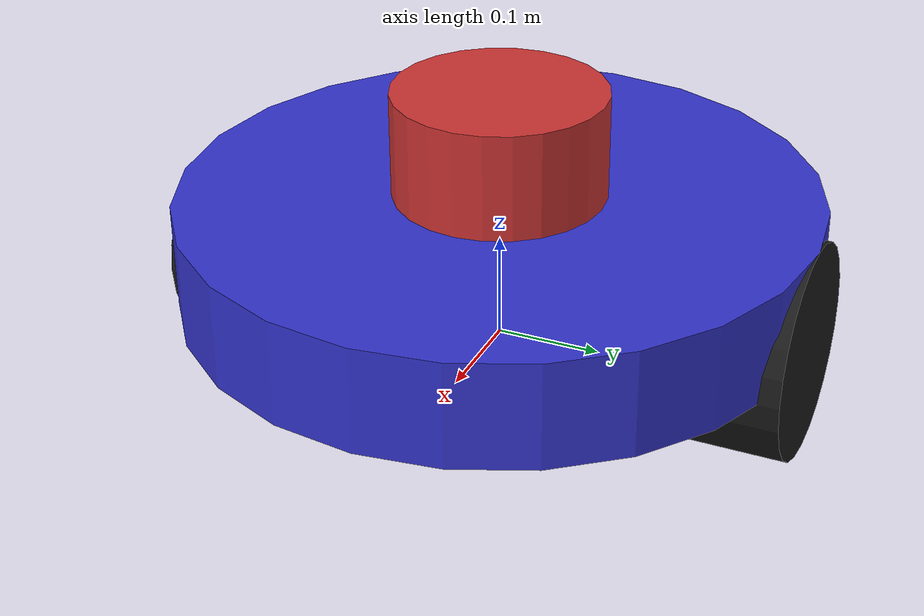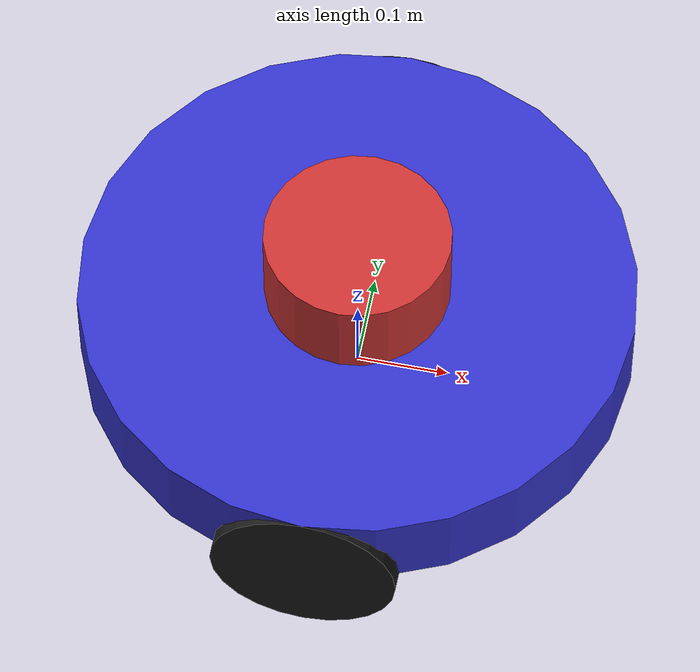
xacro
<?xml version="1.0"?>
<robot xmlns:xacro="http://www.ros.org/wiki/xacro" name="differential_drive_robot">

  <!-- Define properties for robot dimensions -->
  <xacro:property name="wheel_radius" value="0.1"/>
  <xacro:property name="wheel_thickness" value="0.1"/>
  <xacro:property name="wheel_mass" value="0.5"/>

  <xacro:property name="base_radius" value="0.3"/>
  <xacro:property name="base_height" value="0.1"/>
  <xacro:property name="base_mass" value="5.0"/>

  <xacro:property name="lidar_radius" value="0.1"/>
  <xacro:property name="lidar_height" value="0.1"/>
  <xacro:property name="lidar_mass" value="0.3"/>

  <xacro:property name="wheel_separation" value="0.5"/>

  <!-- Macro for calculating cylinder inertia -->
  <xacro:macro name="cylinder_inertia" params="mass radius height">
    <inertia
      ixx="${mass * (3 * radius * radius + height * height) / 12}"
      ixy="0.0"
      ixz="0.0"
      iyy="${mass * (3 * radius * radius + height * height) / 12}"
      iyz="0.0"
      izz="${mass * radius * radius / 2}"/>
  </xacro:macro>

  <!-- Macro for box inertia -->
  <xacro:macro name="box_inertia" params="mass x y z">
    <inertia
      ixx="${mass * (y*y + z*z) / 12}"
      ixy="0.0"
      ixz="0.0"
      iyy="${mass * (x*x + z*z) / 12}"
      iyz="0.0"
      izz="${mass * (x*x + y*y) / 12}"/>
  </xacro:macro>

  <!-- Base Link -->
  <link name="base_link">
    <visual>
      <origin xyz="0 0 0" rpy="0 0 0"/>
      <geometry>
        <cylinder radius="${base_radius}" length="${base_height}"/>
      </geometry>
      <material name="blue">
        <color rgba="0.2 0.2 0.8 1.0"/>
      </material>
    </visual>

    <collision>
      <origin xyz="0 0 0" rpy="0 0 0"/>
      <geometry>
        <cylinder radius="${base_radius}" length="${base_height}"/>
      </geometry>
    </collision>

    <inertial>
      <origin xyz="0 0 0" rpy="0 0 0"/>
      <mass value="${base_mass}"/>
      <xacro:cylinder_inertia mass="${base_mass}" radius="${base_radius}" height="${base_height}"/>
    </inertial>
  </link>

  <!-- Base Footprint -->
  <link name="base_footprint"/>

  <joint name="base_footprint_joint" type="fixed">
    <parent link="base_footprint"/>
    <child link="base_link"/>
    <origin xyz="0 0 ${wheel_radius}" rpy="0 0 0"/>
  </joint>

  <!-- Wheel Macro -->
  <xacro:macro name="wheel" params="prefix reflect">
    <link name="${prefix}_wheel_link">
      <visual>
        <origin xyz="0 0 0" rpy="${pi/2} 0 0"/>
        <geometry>
          <cylinder radius="${wheel_radius}" length="${wheel_thickness}"/>
        </geometry>
        <material name="black">
          <color rgba="0.1 0.1 0.1 1.0"/>
        </material>
      </visual>

      <collision>
        <origin xyz="0 0 0" rpy="${pi/2} 0 0"/>
        <geometry>
          <cylinder radius="${wheel_radius}" length="${wheel_thickness}"/>
        </geometry>
      </collision>

      <inertial>
        <origin xyz="0 0 0" rpy="${pi/2} 0 0"/>
        <mass value="${wheel_mass}"/>
        <inertia
          ixx="${wheel_mass * (3 * wheel_radius * wheel_radius + wheel_thickness * wheel_thickness) / 12}"
          ixy="0.0"
          ixz="0.0"
          iyy="${wheel_mass * (3 * wheel_radius * wheel_radius + wheel_thickness * wheel_thickness) / 12}"
          iyz="0.0"
          izz="${wheel_mass * wheel_radius * wheel_radius / 2}"/>
      </inertial>
    </link>

    <joint name="${prefix}_wheel_joint" type="continuous">
      <parent link="base_link"/>
      <child link="${prefix}_wheel_link"/>
      <origin xyz="0 ${reflect * wheel_separation/2} ${-base_height/2}" rpy="0 0 0"/>
      <axis xyz="0 1 0"/>
      <limit effort="10.0" velocity="10.0"/>
    </joint>
  </xacro:macro>

  <!-- Create wheels -->
  <xacro:wheel prefix="left" reflect="1"/>
  <xacro:wheel prefix="right" reflect="-1"/>

  <!-- Lidar Link -->
  <link name="lidar_link">
    <visual>
      <origin xyz="0 0 0" rpy="0 0 0"/>
      <geometry>
        <cylinder radius="${lidar_radius}" length="${lidar_height}"/>
      </geometry>
      <material name="red">
        <color rgba="0.8 0.2 0.2 1.0"/>
      </material>
    </visual>

    <collision>
      <origin xyz="0 0 0" rpy="0 0 0"/>
      <geometry>
        <cylinder radius="${lidar_radius}" length="${lidar_height}"/>
      </geometry>
    </collision>

    <inertial>
      <origin xyz="0 0 0" rpy="0 0 0"/>
      <mass value="${lidar_mass}"/>
      <xacro:cylinder_inertia mass="${lidar_mass}" radius="${lidar_radius}" height="${lidar_height}"/>
    </inertial>
  </link>

  <joint name="lidar_joint" type="fixed">
    <parent link="base_link"/>
    <child link="lidar_link"/>
    <origin xyz="0 0 ${base_height/2 + lidar_height/2}" rpy="0 0 0"/>
  </joint>

  <!-- IMU Link -->
  <link name="imu_link">
    <visual>
      <origin xyz="0 0 0" rpy="0 0 0"/>
      <geometry>
        <box size="0.05 0.05 0.02"/>
      </geometry>
      <material name="green">
        <color rgba="0.2 0.8 0.2 1.0"/>
      </material>
    </visual>

    <collision>
      <origin xyz="0 0 0" rpy="0 0 0"/>
      <geometry>
        <box size="0.05 0.05 0.02"/>
      </geometry>
    </collision>

    <inertial>
      <origin xyz="0 0 0" rpy="0 0 0"/>
      <mass value="0.1"/>
      <xacro:box_inertia mass="0.1" x="0.05" y="0.05" z="0.02"/>
    </inertial>
  </link>

  <joint name="imu_joint" type="fixed">
    <parent link="base_link"/>
    <child link="imu_link"/>
    <origin xyz="0 0 0" rpy="0 0 0"/>
  </joint>

  <!-- Gazebo Plugins and Sensors -->

  <!-- Gazebo reference for base_link -->
  <gazebo reference="base_link">
    <material>Gazebo/Blue</material>
  </gazebo>

  <gazebo reference="left_wheel_link">
    <material>Gazebo/Black</material>
  </gazebo>

  <gazebo reference="right_wheel_link">
    <material>Gazebo/Black</material>
  </gazebo>

  <gazebo reference="lidar_link">
    <material>Gazebo/Red</material>
  </gazebo>

  <gazebo reference="imu_link">
    <material>Gazebo/Green</material>
  </gazebo>

  <!-- Differential Drive Plugin -->
  <gazebo>
    <plugin name="differential_drive_controller" filename="libgazebo_ros_diff_drive.so">
      <update_rate>50</update_rate>
      <left_joint>left_wheel_joint</left_joint>
      <right_joint>right_wheel_joint</right_joint>
      <wheel_separation>${wheel_separation}</wheel_separation>
      <wheel_diameter>${2*wheel_radius}</wheel_diameter>
      <max_wheel_torque>20</max_wheel_torque>
      <max_wheel_acceleration>1.0</max_wheel_acceleration>
      <command_topic>cmd_vel</command_topic>
      <publish_odom>true</publish_odom>
      <publish_odom_tf>true</publish_odom_tf>
      <publish_wheel_tf>true</publish_wheel_tf>
      <odometry_topic>odom</odometry_topic>
      <odometry_frame>odom</odometry_frame>
      <robot_base_frame>base_footprint</robot_base_frame>
    </plugin>
  </gazebo>

  <!-- Lidar Sensor Plugin -->
  <gazebo reference="lidar_link">
    <sensor name="lidar_sensor" type="ray">
      <always_on>true</always_on>
      <update_rate>10</update_rate>
      <visualize>true</visualize>
      <ray>
        <scan>
          <horizontal>
            <samples>360</samples>
            <resolution>1</resolution>
            <min_angle>-3.14159</min_angle>
            <max_angle>3.14159</max_angle>
          </horizontal>
        </scan>
        <range>
          <min>0.12</min>
          <max>10.0</max>
          <resolution>0.01</resolution>
        </range>
        <noise>
          <type>gaussian</type>
          <mean>0.0</mean>
          <stddev>0.01</stddev>
        </noise>
      </ray>
      <plugin name="laser_controller" filename="libgazebo_ros_ray_sensor.so">
        <ros>
          <remapping>~/out:=scan</remapping>
        </ros>
        <output_type>sensor_msgs/LaserScan</output_type>
        <frame_name>lidar_link</frame_name>
      </plugin>
    </sensor>
  </gazebo>

  <!-- IMU Sensor Plugin -->
  <gazebo reference="imu_link">
    <sensor name="imu_sensor" type="imu">
      <always_on>true</always_on>
      <update_rate>100</update_rate>
      <visualize>true</visualize>
      <plugin name="imu_plugin" filename="libgazebo_ros_imu_sensor.so">
        <ros>
          <remapping>~/out:=imu</remapping>
        </ros>
        <initial_orientation_as_reference>false</initial_orientation_as_reference>
        <frame_name>imu_link</frame_name>
      </plugin>
      <imu>
        <angular_velocity>
          <x>
            <noise type="gaussian">
              <mean>0.0</mean>
              <stddev>2e-4</stddev>
            </noise>
          </x>
          <y>
            <noise type="gaussian">
              <mean>0.0</mean>
              <stddev>2e-4</stddev>
            </noise>
          </y>
          <z>
            <noise type="gaussian">
              <mean>0.0</mean>
              <stddev>2e-4</stddev>
            </noise>
          </z>
        </angular_velocity>
        <linear_acceleration>
          <x>
            <noise type="gaussian">
              <mean>0.0</mean>
              <stddev>1.7e-2</stddev>
            </noise>
          </x>
          <y>
            <noise type="gaussian">
              <mean>0.0</mean>
              <stddev>1.7e-2</stddev>
            </noise>
          </y>
          <z>
            <noise type="gaussian">
              <mean>0.0</mean>
              <stddev>1.7e-2</stddev>
            </noise>
          </z>
        </linear_acceleration>
      </imu>
    </sensor>
  </gazebo>

</robot>
